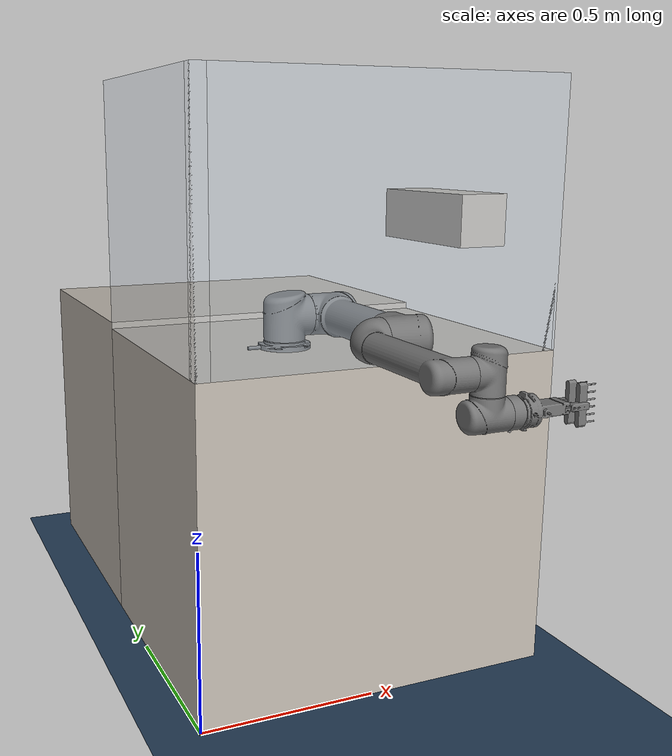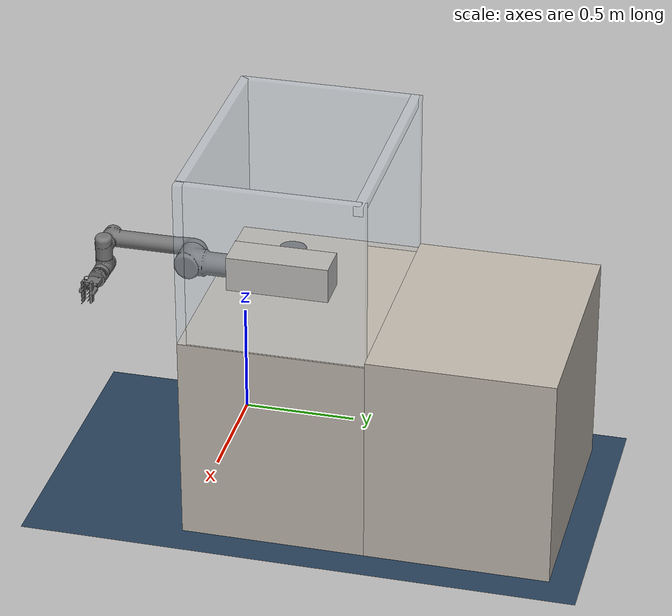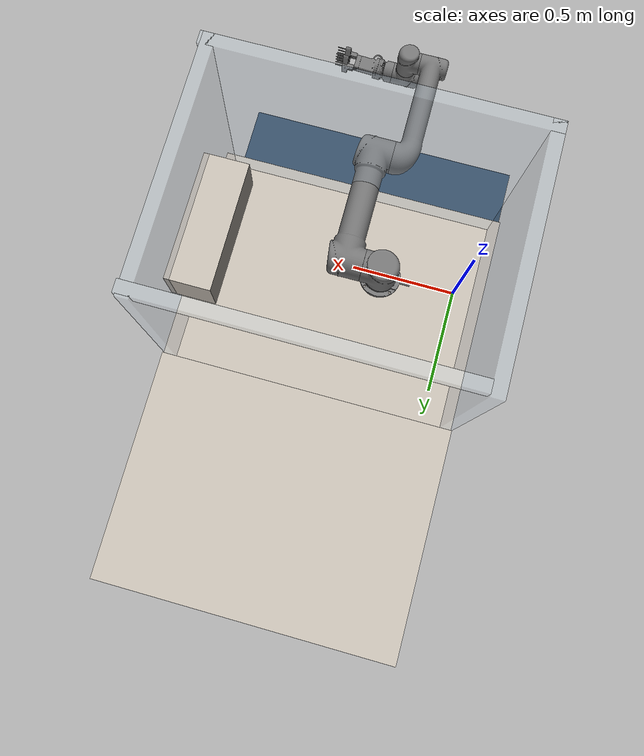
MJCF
<!--Link  MuJoCo modeling: http://www.mujoco.org/book/modeling.html-->

<mujoco model="ur5gripper">
    <compiler angle="radian"
              inertiafromgeom="true"
              texturedir="textures/"
              meshdir="mesh/visual/"/>

              <!--timestep="2e-3"
            iterations="10"
            tolerance="1e-10"
            impratio="20"-->
    <option
            integrator="implicitfast"/>
    <size njmax="600" nconmax="150" nstack="300000"/>

    <default>
        <site rgba="0.8 0.6 0.7 0.3" type="ellipsoid" group="3"/>
        <geom contype='1' conaffinity='1' condim='4'  margin="1e-3" solref=".01 1" solimp=".99 .99 .01" />
        <default class="UR5">
            <joint damping='25'/> <!--Og 65-->
        </default>
        <default class="UR5e">
            <joint damping='5'/> <!--Og 45-->
        </default>
        <default class="GRIPPER">
            <joint damping='1'/>
        </default>
        <!--From UR5e-->
        <default class="collision">
            <geom type="capsule" group="0"/>
            <default class="eef_collision">
            <geom type="cylinder"/>
            </default>
        </default>
    </default>

    <visual>
        <map fogstart="3" fogend="5" znear="0.05"/>
        <quality shadowsize="2048"/>
        <scale framelength="0.1"
               framewidth="0.005"
               contactwidth="0.1"
               contactheight="0.005"
               forcewidth="0.01"
               />
    </visual>

    <!--Assets-->
    <asset>
        <!--Meshes-->
        <mesh name="base"           file="base.stl"     />
        <mesh name="shoulder"       file="shoulder.stl" />
        <mesh name="upperarm"       file="upperarm.stl" />
        <mesh name="forearm"        file="forearm.stl"  />
        <mesh name="wrist1"         file="wrist1.stl"   />
        <mesh name="wrist2"         file="wrist2.stl"   />
        <mesh name="wrist3"         file="wrist3.stl"   />

        <!--Changed-->
        <mesh name="zimmer_gripper_adapter"    file="zimmer_gripper_adapter.stl"     scale = "0.001 0.001 0.001"/>
        <mesh name="zimmer_gripper_left"    file="zimmer_gripper_left.stl"     scale = "0.001 0.001 0.001"/>
        <mesh name="zimmer_gripper_right"    file="zimmer_gripper_right.stl"     scale = "0.001 0.001 0.001"/>

        <!--Textures-->
        <texture name="ur5_tex"     type="2d"       builtin="flat" height="32" width="32" rgb1="0.45 0.45 0.45" />
        <texture name="gripper_tex" type="2d"       builtin="flat" height="32" width="32" rgb1="0.45 0.45 0.45" rgb2="0 0 0"/>
        <texture name="bench_tex"   type="2d"       builtin="flat" height="32" width="32" rgb1="0.7 0.7 0.7" />
        <texture name="sky_tex"     type="skybox"   builtin="gradient" width="100" height="100" rgb1="1 1 1" rgb2="0.3 0.3 0.8" />
        <texture name="texgeom"     type="cube"     builtin="flat" mark="cross" width="127" height="1278" rgb1="0.8 0.6 0.4" rgb2="0.8 0.6 0.4" markrgb="1 1 1" random="0.01" />
        <texture name="floor_tex"   type="2d"        builtin="checker" rgb1=".2 .3 .4" rgb2=".1 .2 .3" width="100" height="100" />
        <texture name="wood"        type="cube"     file="wood2.png"/>
        <texture name="metal"        type="cube"     file="metal2.png"/>
        <!--Materials-->
        <material name="ur5_mat"        texture="ur5_tex"   shininess="0.9" specular="0.75" reflectance="0.3" /> <!--rgba="0.2 0.2 0.2 0.2"-->
        <material name="gripper_mat"    texture="gripper_tex"   shininess="0.9" specular="0.75" reflectance="0.4"/>
        <material name='floor_mat'      texture="floor_tex"  shininess="0.8" texrepeat="10 10" specular="0.7"  reflectance="0.5" />
        <material name='geom'           texture="texgeom"   texuniform="true" />
        <material name="bench_mat"      texture="metal"   shininess="0.1" specular="0.5" reflectance="0.2"/>
        <material name="tablecube"      texture="wood" rgba=".8 .8 .8 1"/>
        <!-- IGCV   -->
        <material name="glass" rgba="0.8 0.9 1 0.15" specular="1" shininess="1" reflectance="0.3"/>
    </asset>

    <!--Contacts-->
    <contact>
        <exclude body1="robot_cell" body2="base_link"/>
		<exclude body1="base_link" body2="shoulder_link"/>
		<exclude body1="shoulder_link" body2="upper_arm_link"/>
        <exclude body1="upper_arm_link" body2="forearm_link"/>
		<exclude body1="forearm_link" body2="wrist_1_link"/>
		<exclude body1="wrist_1_link" body2="wrist_2_link"/>
        <exclude body1="wrist_2_link" body2="wrist_3_link"/>
        <exclude body1="robot_cell" body2="shoulder_link"/>
        <exclude body1="robot_cell" body2="upper_arm_link"/>
        <exclude body1="robot_cell" body2="forearm_link"/>

    </contact>

    <!--MODEL DESCRIPTION-->
    <worldbody>
        <!--Lighting parameters-->
        <light name="light3" mode="targetbody" target="robot_cell" directional="true" pos="1 1 3" />
        <!--Camera parameters-->
        <!--Floor Property-->
        <geom name='floor' material="floor_mat" pos='0 0 0' size='2.5 2.5 0.1'  type='plane' />

        <site name="world_axes" pos="0 0 0" type="ellipsoid" size="0.01 0.01 0.01" rgba="0 0 0 1" />

        <!-- X-Achse (rot) -->
        <geom name="x_axis" type="capsule" fromto="0 0 0 0.2 0 0" size="0.005" rgba="1 0 0 1"/>
        <!-- Y-Achse (grün) -->
        <geom name="y_axis" type="capsule" fromto="0 0 0 0 0.2 0" size="0.005" rgba="0 1 0 1"/>
        <!-- Z-Achse (blau) -->
        <geom name="z_axis" type="capsule" fromto="0 0 0 0 0 0.2" size="0.005" rgba="0 0 1 1"/>

        <body name="robot_cell" pos="0 0 0">

            <!-- Tischplatte -->
            <geom name="table_block" type="box" size="0.525 0.40 0.465" pos="0.525 0.40 0.465" contype="1" conaffinity="1" material="bench_mat" />
            <geom name="table_block_2" type="box" size="0.525 0.40 0.475" pos="0.525 1.20 0.475" contype="1" conaffinity="1" material="bench_mat" />
            <!-- Wand links (x = -0.02 + 0.02) = 0.02 -->
            <geom name="wall_left" type="box" size="0.02 0.40 0.37" pos="0.02 0.40 1.3" contype="1" conaffinity="1" material="glass"/>
            <!-- Wand rechts (x = 1.042 - 0.02 = 1.022) -->
            <geom name="wall_right" type="box" size="0.02 0.40 0.37" pos="1.022 0.40 1.3" contype="1" conaffinity="1" material="glass"/>
            <!-- Wand vorne (y = -0.02 + 0.02 = 0.02) -->
            <geom name="wall_front" type="box" size="0.525 0.02 0.37" pos="0.525 0.02 1.3" contype="1" conaffinity="1" material="glass"/>
            <!-- Decke -->
            <geom name="ceiling" type="box" size="0.525 0.02 0.02" pos="0.525 0.772 1.65" contype="1" conaffinity="1" material="glass"/>
            <!--GreiferFach-->
            <geom name="gripper_shelf" type="box" size="0.075 0.215 0.075" pos="0.945 0.425 1.275" contype="1" conaffinity="1" material="bench_mat"/>

            <inertial pos="0 0 0" mass="1000" diaginertia="0 0 0" />
            <body name="base_link" pos="0.3755 0.325 0.93" quat="-1 0 0 1" >
                <inertial pos="0 0 0" quat="0.5 0.5 -0.5 0.5" mass="4" diaginertia="0.0072 0.00443333 0.00443333" />
                <geom type="mesh"  mesh="base" material="ur5_mat"/>

                <body name="shoulder_link" pos="0 0 0.089159" >
                    <inertial pos="0 0 0" mass="3.7" diaginertia="0.0102675 0.0102675 0.00666" />
                    <joint name="shoulder_pan_joint" class="UR5" pos="0 0 0" axis="0 0 1" limited="true" range="-6.28318 6.28318" />
                    <geom name="shoulder_geom" type="mesh"  mesh="shoulder" material="ur5_mat"/>

                    <body name="upper_arm_link" pos="0 0.13585 0" quat="0.707107 0 0.707107 0">
                        <inertial pos="0 0 0.28" mass="8.393" diaginertia="0.226891 0.226891 0.0151074" />
                        <joint name="shoulder_lift_joint" class="UR5" pos="0 0 0" axis="0 1 0" limited="true" range="-6.28318 6.28318" /> <!--Range= -6.28318 6.28318-->
                        <geom name="upperarm_geom" type="mesh"  mesh="upperarm" material="ur5_mat" />

                        <body name="forearm_link" pos="0 -0.1197 0.425">
                            <inertial pos="0 0 0.25" mass="2.275" diaginertia="0.0494433 0.0494433 0.004095" />
                            <joint name="elbow_joint" class="UR5" pos="0 0 0" axis="0 1 0" limited="true" range="-6.28318 6.28318" />
                            <geom name="forearm_geom" type="mesh"  mesh="forearm" material="ur5_mat"/>

                            <body name="wrist_1_link" pos="0 0 0.39225" quat="0.707107 0 0.707107 0">
                                <inertial pos="0 0 0" quat="0.5 0.5 -0.5 0.5" mass="1.219" diaginertia="0.21942 0.111173 0.111173" />
                                <joint name="wrist_1_joint" class="UR5e" pos="0 0 0" axis="0 1 0" limited="true" range="-6.28318 6.28318" />
                                <geom name="wrist_1_geom" type="mesh"  mesh="wrist1" material="ur5_mat"/>

                                <body name="wrist_2_link" pos="0 0.093 0" >
                                    <inertial pos="0 0 0" quat="0.5 0.5 -0.5 0.5" mass="1.219" diaginertia="0.21942 0.111173 0.111173" />
                                    <joint name="wrist_2_joint" class="UR5e" pos="0 0 0" axis="0 0 1" limited="true" range="-6.28318 6.28318" />
                                    <geom name="wrist_2_geom" type="mesh"  mesh="wrist2" material="ur5_mat"/>

                                    <body name="wrist_3_link" pos="0 0 0.09465" ><!-- quat="0.707107 0 0.707107 0"-->
                                        <inertial pos="0 0 0" quat="0.5 0.5 -0.5 0.5" mass="0.1879" diaginertia="0.033822 0.0171365 0.0171365" />
                                        <joint name="wrist_3_joint" class="UR5e" pos="0 0 0" axis="0 1 0" limited="true" range="-6.28318 6.28318" />
                                        <geom name="wrist_3_geom" type="mesh"  mesh="wrist3" material="ur5_mat"/>

                                        <!--Changed-->
                                        <body name="ee_link" pos="0 0.087 0" quat="0.5 0.5 -0.5 0.5"> -->
                                            <inertial pos="-0.01 0 0" mass="0.001" diaginertia="1.66667e-08 1.66667e-08 1.66667e-08" />
                                            <geom name="ee_adapter_geom" type="mesh"  mesh="zimmer_gripper_adapter" material="ur5_mat"/>

						                    <body name="ee_gripper_left_link" pos="-0.0015 0 0" quat="1 0 0 0"> -->
                                            	<inertial pos="-0.01 0 0" mass="0.001" diaginertia="1.66667e-08 1.66667e-08 1.66667e-08" />
                                                <joint name="ee_gripper_left_joint" type="slide" pos="0 0 0" axis="0 1 0" limited="true" range="0.025 0.05" />
                                            	<geom name="ee_left_geom" type="mesh"  mesh="zimmer_gripper_left" material="ur5_mat"/>
                                            </body>

                                            <body name="ee_gripper_right_link" pos="0.001 0 0" quat="1 0 0 0"> -->
                                                <inertial pos="0.01 0  0" mass="0.001" diaginertia="1.66667e-08 1.66667e-08 1.66667e-08" />
                                                <joint name="ee_gripper_right_joint" type="slide" pos="0 0 0" axis="0 1 0" limited="true" range="-0.05 -0.025" />
                                                <geom name="ee_right_geom" type="mesh"  mesh="zimmer_gripper_right" material="ur5_mat"/>
                                            </body>
                                        </body>
                                    </body>
                                </body>
                            </body>
                        </body>
                    </body>
                </body>
            </body>
        </body>

    </worldbody>

    <!--ACTUATORS-->
    <actuator>
        <!--UR5-->
        <position name='shoulder_pan' ctrllimited="true" ctrlrange="-6.28318 6.28318" joint='shoulder_pan_joint' kp="2000" kv="100" forcerange="-150 150"/> <!--kp500-->
        <position name='shoulder_lift' ctrllimited="true" ctrlrange="-6.28318 6.28318" joint='shoulder_lift_joint' kp="2000" kv="100" forcerange="-150 150"/><!--kp500-->
        <position name='forearm' ctrllimited="true" ctrlrange="-6.28318 6.28318" joint='elbow_joint' kp="2000" kv="100" forcerange="-150 150" /><!--kp500-->
        <position name='wrist_1' ctrllimited="true" ctrlrange="-6.28318 6.28318" joint='wrist_1_joint' kp="500" kv="25" forcerange="-28 28" /><!--kp100-->
        <position name='wrist_2' ctrllimited="true" ctrlrange="-6.28318 6.28318" joint='wrist_2_joint' kp="500" kv="25" forcerange="-28 28"/><!--kp100-->
        <position name='wrist_3' ctrllimited="true" ctrlrange="-6.28318 6.28318" joint='wrist_3_joint' kp="500" kv="25" forcerange="-28 28"/><!--kp100-->

        <!--Changed-->
        <position name='ee_gripper_left' ctrllimited="true" ctrlrange="0.025 0.05" joint='ee_gripper_left_joint' kp="500" kv="25" forcerange="-28 28"/><!--kp100-->
        <position name='ee_gripper_right' ctrllimited="true" ctrlrange="-0.05 -0.025" joint='ee_gripper_right_joint' kp="500" kv="25" forcerange="-28 28"/><!--kp100-->

    </actuator>

    <keyframe>
        <key name="home" qpos="-1.5708 -1.5708 1.5708 -1.5708 -1.5708 0" ctrl="-1.5708 -1.5708 1.5708 -1.5708 -1.5708 0"/>
    </keyframe>

</mujoco>
